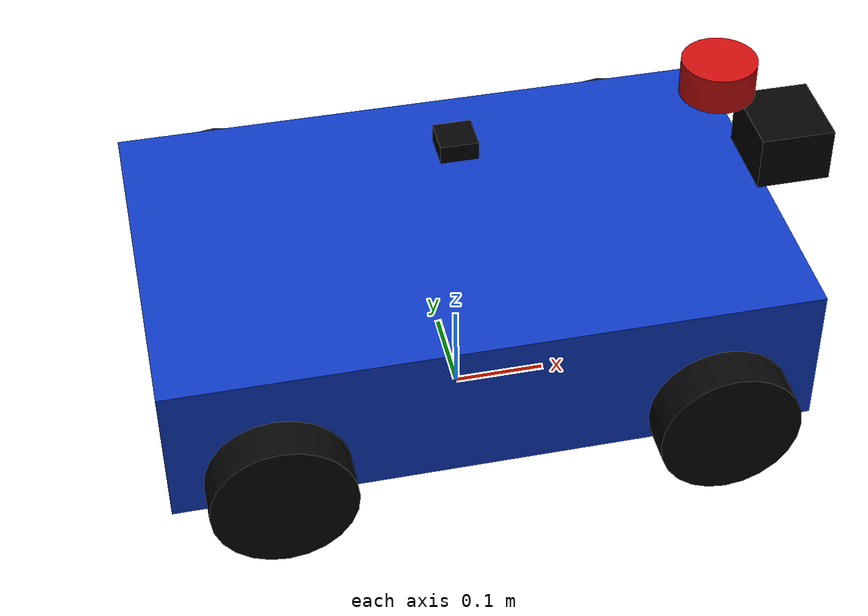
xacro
<?xml version="1.0"?>
<robot name="patrol_robot" xmlns:xacro="http://www.ros.org/wiki/xacro">
  <xacro:include filename="$(find community_description)/urdf/base.urdf.xacro"/>
  <xacro:include filename="$(find community_description)/urdf/sensors.urdf.xacro"/>
  <xacro:patrol_base/>
  <xacro:patrol_sensors/>
</robot>

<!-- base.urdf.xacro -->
<robot xmlns:xacro="http://www.ros.org/wiki/xacro">
  <xacro:macro name="wheel" params="name x y driven">
    <link name="${name}"><visual><origin rpy="1.5708 0 0"/><geometry><cylinder radius="0.075" length="0.045"/></geometry><material name="black"><color rgba="0.02 0.02 0.02 1"/></material></visual><collision><origin rpy="1.5708 0 0"/><geometry><cylinder radius="0.075" length="0.045"/></geometry></collision><inertial><mass value="0.35"/><inertia ixx="0.001" ixy="0" ixz="0" iyy="0.001" iyz="0" izz="0.001"/></inertial></link>
    <joint name="${name}_joint" type="${driven}"><parent link="base_link"/><child link="${name}"/><origin xyz="${x} ${y} -0.035"/><axis xyz="0 1 0"/></joint>
  </xacro:macro>
  <xacro:macro name="patrol_base">
    <link name="base_footprint"/>
    <joint name="base_footprint_joint" type="fixed"><parent link="base_footprint"/><child link="base_link"/><origin xyz="0 0 0.16"/></joint>
    <link name="base_link"><visual><geometry><box size="0.68 0.42 0.16"/></geometry><material name="blue"><color rgba="0.05 0.22 0.75 1"/></material></visual><collision><geometry><box size="0.68 0.42 0.16"/></geometry></collision><inertial><mass value="7.0"/><inertia ixx="0.10" ixy="0" ixz="0" iyy="0.18" iyz="0" izz="0.22"/></inertial></link>
    <xacro:wheel name="left_rear_wheel" x="-0.23" y="0.245" driven="continuous"/><xacro:wheel name="right_rear_wheel" x="-0.23" y="-0.245" driven="continuous"/>
    <xacro:wheel name="left_front_wheel" x="0.23" y="0.245" driven="fixed"/><xacro:wheel name="right_front_wheel" x="0.23" y="-0.245" driven="fixed"/>
    <gazebo><plugin name="differential_drive_controller" filename="libgazebo_ros_diff_drive.so"><robotNamespace>/</robotNamespace><commandTopic>/cmd_vel</commandTopic><odometryTopic>odom</odometryTopic><odometryFrame>odom</odometryFrame><robotBaseFrame>base_footprint</robotBaseFrame><publishOdomTF>true</publishOdomTF><publishWheelTF>false</publishWheelTF><leftJoint>left_rear_wheel_joint</leftJoint><rightJoint>right_rear_wheel_joint</rightJoint><wheelSeparation>0.49</wheelSeparation><wheelDiameter>0.15</wheelDiameter><wheelAcceleration>2.0</wheelAcceleration><wheelTorque>10.0</wheelTorque><updateRate>50</updateRate></plugin></gazebo>
  </xacro:macro>
</robot>

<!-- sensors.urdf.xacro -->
<robot xmlns:xacro="http://www.ros.org/wiki/xacro">
  <xacro:macro name="patrol_sensors">
    <link name="camera_link"><visual><geometry><box size="0.08 0.09 0.06"/></geometry><material name="sensor_black"><color rgba="0.01 0.01 0.01 1"/></material></visual><collision><geometry><box size="0.08 0.09 0.06"/></geometry></collision><inertial><mass value="0.1"/><inertia ixx="0.0001" ixy="0" ixz="0" iyy="0.0001" iyz="0" izz="0.0001"/></inertial></link>
    <joint name="camera_joint" type="fixed"><parent link="base_link"/><child link="camera_link"/><origin xyz="0.36 0 0.13"/></joint>
    <link name="laser_link"><visual><geometry><cylinder radius="0.04" length="0.04"/></geometry><material name="sensor_red"><color rgba="0.8 0.05 0.05 1"/></material></visual><collision><geometry><cylinder radius="0.04" length="0.04"/></geometry></collision><inertial><mass value="0.1"/><inertia ixx="0.0001" ixy="0" ixz="0" iyy="0.0001" iyz="0" izz="0.0001"/></inertial></link>
    <joint name="laser_joint" type="fixed"><parent link="base_link"/><child link="laser_link"/><origin xyz="0.28 0 0.22"/></joint>
    <link name="imu_link"><visual><geometry><box size="0.04 0.04 0.02"/></geometry><material name="sensor_black_imu"><color rgba="0.01 0.01 0.01 1"/></material></visual><collision><geometry><box size="0.04 0.04 0.02"/></geometry></collision><inertial><mass value="0.1"/><inertia ixx="0.0001" ixy="0" ixz="0" iyy="0.0001" iyz="0" izz="0.0001"/></inertial></link>
    <joint name="imu_joint" type="fixed"><parent link="base_link"/><child link="imu_link"/><origin xyz="0 0 0.18"/></joint>
    <gazebo reference="camera_link"><sensor type="camera" name="front_camera_sensor"><always_on>true</always_on><update_rate>20</update_rate><camera name="front_camera"><horizontal_fov>1.047</horizontal_fov><image><width>640</width><height>480</height><format>R8G8B8</format></image><clip><near>0.05</near><far>30</far></clip></camera><plugin name="front_camera_controller" filename="libgazebo_ros_camera.so"><cameraName>camera</cameraName><imageTopicName>image_raw</imageTopicName><cameraInfoTopicName>camera_info</cameraInfoTopicName><frameName>camera_link</frameName></plugin></sensor></gazebo>
    <gazebo reference="laser_link"><sensor type="ray" name="front_laser_sensor"><update_rate>10</update_rate><ray><scan><horizontal><samples>720</samples><resolution>1</resolution><min_angle>-3.14159</min_angle><max_angle>3.14159</max_angle></horizontal></scan><range><min>0.08</min><max>10</max><resolution>0.01</resolution></range></ray><plugin name="laser_controller" filename="libgazebo_ros_laser.so"><topicName>/scan</topicName><frameName>laser_link</frameName></plugin></sensor></gazebo>
    <gazebo reference="imu_link"><sensor type="imu" name="imu_sensor"><always_on>true</always_on><update_rate>50</update_rate><plugin name="imu_controller" filename="libgazebo_ros_imu.so"><topicName>/imu/data</topicName><frameName>imu_link</frameName></plugin></sensor></gazebo>
  </xacro:macro>
</robot>
